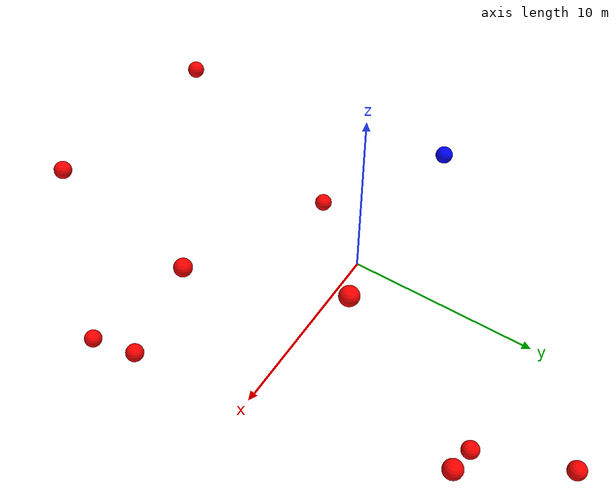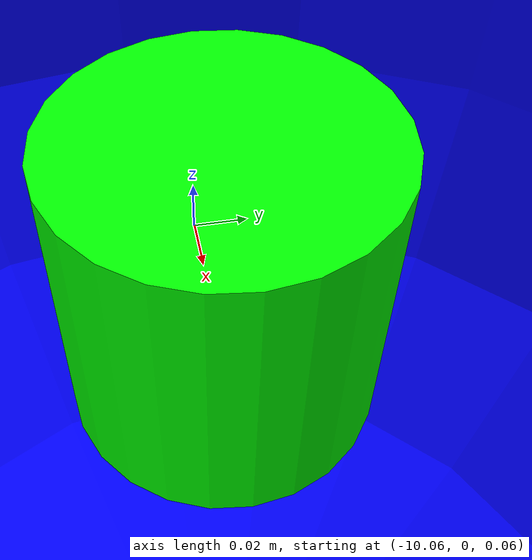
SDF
<?xml version="1.0" ?>
<sdf version="1.8">
    <world name="3d_world">
        <physics name="1ms" type="ode">
            <max_step_size>0.001</max_step_size>
            <real_time_factor>1.0</real_time_factor>
            <real_time_update_rate>1000.0</real_time_update_rate>
        </physics>
        <gravity>0 0 0</gravity>

        <plugin
            filename="gz-sim-physics-system"
            name="gz::sim::v8::systems::Physics">
        </plugin>
        <plugin
            filename="libignition-gazebo-user-commands-system.so"
            name="ignition::gazebo::systems::UserCommands">
        </plugin>
        <plugin
            filename="gz-sim-scene-broadcaster-system"
            name="gz::sim::systems::SceneBroadcaster">
        </plugin>
        <plugin
            filename="gz-sim-sensors-system"
            name="gz::sim::systems::Sensors">
            <render_engine>ogre2</render_engine>
        </plugin>

        <light type="directional" name="sun">
            <cast_shadows>true</cast_shadows>
            <pose>0 0 10 0 0 0</pose>
            <diffuse>0.8 0.8 0.8 1</diffuse>
            <specular>0.2 0.2 0.2 1</specular>
            <attenuation>
                <range>1000</range>
                <constant>0.9</constant>
                <linear>0.01</linear>
                <quadratic>0.001</quadratic>
            </attenuation>
            <direction>-0.5 0.1 -0.9</direction>
        </light>

        <!-- AGENTE -->
        <model name='agente' canonical_link='chassis'>
            <pose relative_to='world'>-10.0 0 0.0 0 0 0</pose>
            <link name='chassis'>
                <pose relative_to='__model__'>0.0 0 0.0 0 0 0</pose>
                <inertial>
                    <mass>1.14395</mass>
                    <inertia>
                        <ixx>0.095329</ixx>
                        <ixy>0</ixy>
                        <ixz>0</ixz>
                        <iyy>0.381317</iyy>
                        <iyz>0</iyz>
                        <izz>0.476646</izz>
                    </inertia>
                </inertial>
                <visual name='visual'>
                    <geometry>
                        <sphere>
                            <radius>0.5</radius>
                        </sphere>
                    </geometry>
                    <material>
                        <ambient>0.0 0.0 1.0 1</ambient>
                        <diffuse>0.0 0.0 1.0 1</diffuse>
                        <specular>0.0 0.0 1.0 1</specular>
                    </material>
                </visual>
                <collision name='collision'>
                    <geometry>
                        <sphere>
                            <radius>0.5</radius>
                        </sphere>
                    </geometry>
                </collision>
                <enable_gravity>false</enable_gravity>
            </link>

            <link name='lidar_link'>
                <pose relative_to='chassis'>0.0 0 0.1 0 0 0</pose>
                <inertial>
                    <mass>0.1</mass>
                    <inertia>
                        <ixx>0.000166667</ixx>
                        <iyy>0.000166667</iyy>
                        <izz>0.000166667</izz>
                    </inertia>
                </inertial>
                <collision name='collision'>
                    <geometry>
                        <cylinder>
                            <radius>0.05</radius>
                            <length>0.1</length>
                        </cylinder>
                    </geometry>
                </collision>
                <visual name='visual'>
                    <geometry>
                        <cylinder>
                            <radius>0.05</radius>
                            <length>0.1</length>
                        </cylinder>
                    </geometry>
                    <material>
                        <ambient>0.0 1.0 0.0 1</ambient>
                        <diffuse>0.0 1.0 0.0 1</diffuse>
                        <specular>0.0 1.0 0.0 1</specular>
                    </material>
                </visual>
                <sensor name="lidar" type="gpu_lidar">
                    <topic>scan</topic>
                    <update_rate>10</update_rate>
                    <lidar>
                        <scan>
                            <horizontal>
                                <samples>5000</samples>
                                <resolution>1</resolution>
                                <min_angle>-3.14159</min_angle>
                                <max_angle>3.14159</max_angle>
                            </horizontal>
                        </scan>
                        <range>
                            <min>0.1</min>
                            <max>10.0</max>
                            <resolution>0.01</resolution>
                        </range>
                    </lidar>
                    <visualize>true</visualize>
                    <always_on>true</always_on>
                    <update_rate>10</update_rate>
                    <pose_frame>lidar</pose_frame>
                </sensor>
                <enable_gravity>false</enable_gravity>
            </link>

            <joint name="lidar_joint" type="fixed">
                <parent>chassis</parent>
                <child>lidar_link</child>
            </joint>

            <plugin
                filename="ignition-gazebo-joint-state-publisher-system"
                name="ignition::gazebo::systems::JointStatePublisher">
            </plugin>
            <plugin
                filename="ignition-gazebo-odometry-publisher-system"
                name="ignition::gazebo::systems::OdometryPublisher">
                <dimensions>3</dimensions>
            </plugin>
            <plugin
                filename="ignition-gazebo-velocity-control-system"
                name="ignition::gazebo::systems::VelocityControl">
                <initial_linear>0.0 0 0</initial_linear>
                <initial_angular>0 0 0.0</initial_angular>
            </plugin>
            <plugin
                filename="libignition-gazebo-pose-publisher-system.so"
                name="ignition::gazebo::systems::PosePublisher">
                <topic>/agente/pose</topic>
                <frame_id>agente</frame_id>
                <update_rate>30</update_rate>
            </plugin>
        </model>

        <!-- OBSTACLE 1 -->
        <model name='obstacle_1' canonical_link='obstacle'>
            <static>false</static>
            <pose relative_to='world'>4.31 -16.60 1.62 0 0 0</pose>
            <link name='obstacle'>
                <pose relative_to='__model__'>0.0 0 0.0 0 0 0</pose>
                <visual name='visual'>
                    <geometry>
                        <sphere>
                            <radius>0.50</radius>
                        </sphere>
                    </geometry>
                    <material>
                        <ambient>1.0 0.0 0.0 1</ambient>
                        <diffuse>1.0 0.0 0.0 1</diffuse>
                        <specular>1.0 0.0 0.0 1</specular>
                    </material>
                </visual>
                <collision name='collision'>
                    <geometry>
                        <sphere>
                            <radius>0.50</radius>
                        </sphere>
                    </geometry>
                </collision>
                <enable_gravity>false</enable_gravity>
            </link>

            <plugin
                filename="ignition-gazebo-velocity-control-system"
                name="ignition::gazebo::systems::VelocityControl">
                <initial_linear>-0.02 1.99 -0.19</initial_linear>
                <initial_angular>0 0 0</initial_angular>
            </plugin>

            <plugin
                filename="ignition-gazebo-odometry-publisher-system"
                name="ignition::gazebo::systems::OdometryPublisher">
                <dimensions>3</dimensions>
            </plugin>
        </model>

        <!-- OBSTACLE 2 -->
        <model name='obstacle_2' canonical_link='obstacle'>
            <static>false</static>
            <pose relative_to='world'>9.40 -8.02 -3.20 0 0 0</pose>
            <link name='obstacle'>
                <pose relative_to='__model__'>0.0 0 0.0 0 0 0</pose>
                <visual name='visual'>
                    <geometry>
                        <sphere>
                            <radius>0.50</radius>
                        </sphere>
                    </geometry>
                    <material>
                        <ambient>1.0 0.0 0.0 1</ambient>
                        <diffuse>1.0 0.0 0.0 1</diffuse>
                        <specular>1.0 0.0 0.0 1</specular>
                    </material>
                </visual>
                <collision name='collision'>
                    <geometry>
                        <sphere>
                            <radius>0.50</radius>
                        </sphere>
                    </geometry>
                </collision>
                <enable_gravity>false</enable_gravity>
            </link>

            <plugin
                filename="ignition-gazebo-velocity-control-system"
                name="ignition::gazebo::systems::VelocityControl">
                <initial_linear>-0.99 1.44 0.58</initial_linear>
                <initial_angular>0 0 0</initial_angular>
            </plugin>

            <plugin
                filename="ignition-gazebo-odometry-publisher-system"
                name="ignition::gazebo::systems::OdometryPublisher">
                <dimensions>3</dimensions>
            </plugin>
        </model>

        <!-- OBSTACLE 3 -->
        <model name='obstacle_3' canonical_link='obstacle'>
            <static>false</static>
            <pose relative_to='world'>-7.76 -16.61 0.59 0 0 0</pose>
            <link name='obstacle'>
                <pose relative_to='__model__'>0.0 0 0.0 0 0 0</pose>
                <visual name='visual'>
                    <geometry>
                        <sphere>
                            <radius>0.50</radius>
                        </sphere>
                    </geometry>
                    <material>
                        <ambient>1.0 0.0 0.0 1</ambient>
                        <diffuse>1.0 0.0 0.0 1</diffuse>
                        <specular>1.0 0.0 0.0 1</specular>
                    </material>
                </visual>
                <collision name='collision'>
                    <geometry>
                        <sphere>
                            <radius>0.50</radius>
                        </sphere>
                    </geometry>
                </collision>
                <enable_gravity>false</enable_gravity>
            </link>

            <plugin
                filename="ignition-gazebo-velocity-control-system"
                name="ignition::gazebo::systems::VelocityControl">
                <initial_linear>0.87 1.80 -0.06</initial_linear>
                <initial_angular>0 0 0</initial_angular>
            </plugin>

            <plugin
                filename="ignition-gazebo-odometry-publisher-system"
                name="ignition::gazebo::systems::OdometryPublisher">
                <dimensions>3</dimensions>
            </plugin>
        </model>

        <!-- OBSTACLE 4 -->
        <model name='obstacle_4' canonical_link='obstacle'>
            <static>false</static>
            <pose relative_to='world'>3.18 14.40 -2.87 0 0 0</pose>
            <link name='obstacle'>
                <pose relative_to='__model__'>0.0 0 0.0 0 0 0</pose>
                <visual name='visual'>
                    <geometry>
                        <sphere>
                            <radius>0.50</radius>
                        </sphere>
                    </geometry>
                    <material>
                        <ambient>1.0 0.0 0.0 1</ambient>
                        <diffuse>1.0 0.0 0.0 1</diffuse>
                        <specular>1.0 0.0 0.0 1</specular>
                    </material>
                </visual>
                <collision name='collision'>
                    <geometry>
                        <sphere>
                            <radius>0.50</radius>
                        </sphere>
                    </geometry>
                </collision>
                <enable_gravity>false</enable_gravity>
            </link>

            <plugin
                filename="ignition-gazebo-velocity-control-system"
                name="ignition::gazebo::systems::VelocityControl">
                <initial_linear>0.38 -1.93 0.38</initial_linear>
                <initial_angular>0 0 0</initial_angular>
            </plugin>

            <plugin
                filename="ignition-gazebo-odometry-publisher-system"
                name="ignition::gazebo::systems::OdometryPublisher">
                <dimensions>3</dimensions>
            </plugin>
        </model>

        <!-- OBSTACLE 5 -->
        <model name='obstacle_5' canonical_link='obstacle'>
            <static>false</static>
            <pose relative_to='world'>8.26 9.83 0.64 0 0 0</pose>
            <link name='obstacle'>
                <pose relative_to='__model__'>0.0 0 0.0 0 0 0</pose>
                <visual name='visual'>
                    <geometry>
                        <sphere>
                            <radius>0.50</radius>
                        </sphere>
                    </geometry>
                    <material>
                        <ambient>1.0 0.0 0.0 1</ambient>
                        <diffuse>1.0 0.0 0.0 1</diffuse>
                        <specular>1.0 0.0 0.0 1</specular>
                    </material>
                </visual>
                <collision name='collision'>
                    <geometry>
                        <sphere>
                            <radius>0.50</radius>
                        </sphere>
                    </geometry>
                </collision>
                <enable_gravity>false</enable_gravity>
            </link>

            <plugin
                filename="ignition-gazebo-velocity-control-system"
                name="ignition::gazebo::systems::VelocityControl">
                <initial_linear>-0.13 -1.41 -0.09</initial_linear>
                <initial_angular>0 0 0</initial_angular>
            </plugin>

            <plugin
                filename="ignition-gazebo-odometry-publisher-system"
                name="ignition::gazebo::systems::OdometryPublisher">
                <dimensions>3</dimensions>
            </plugin>
        </model>

        <!-- OBSTACLE 6 -->
        <model name='obstacle_6' canonical_link='obstacle'>
            <static>false</static>
            <pose relative_to='world'>6.15 -6.73 1.50 0 0 0</pose>
            <link name='obstacle'>
                <pose relative_to='__model__'>0.0 0 0.0 0 0 0</pose>
                <visual name='visual'>
                    <geometry>
                        <sphere>
                            <radius>0.50</radius>
                        </sphere>
                    </geometry>
                    <material>
                        <ambient>1.0 0.0 0.0 1</ambient>
                        <diffuse>1.0 0.0 0.0 1</diffuse>
                        <specular>1.0 0.0 0.0 1</specular>
                    </material>
                </visual>
                <collision name='collision'>
                    <geometry>
                        <sphere>
                            <radius>0.50</radius>
                        </sphere>
                    </geometry>
                </collision>
                <enable_gravity>false</enable_gravity>
            </link>

            <plugin
                filename="ignition-gazebo-velocity-control-system"
                name="ignition::gazebo::systems::VelocityControl">
                <initial_linear>-1.53 1.26 -0.28</initial_linear>
                <initial_angular>0 0 0</initial_angular>
            </plugin>

            <plugin
                filename="ignition-gazebo-odometry-publisher-system"
                name="ignition::gazebo::systems::OdometryPublisher">
                <dimensions>3</dimensions>
            </plugin>
        </model>

        <!-- OBSTACLE 7 -->
        <model name='obstacle_7' canonical_link='obstacle'>
            <static>false</static>
            <pose relative_to='world'>9.22 -11.45 -4.77 0 0 0</pose>
            <link name='obstacle'>
                <pose relative_to='__model__'>0.0 0 0.0 0 0 0</pose>
                <visual name='visual'>
                    <geometry>
                        <sphere>
                            <radius>0.50</radius>
                        </sphere>
                    </geometry>
                    <material>
                        <ambient>1.0 0.0 0.0 1</ambient>
                        <diffuse>1.0 0.0 0.0 1</diffuse>
                        <specular>1.0 0.0 0.0 1</specular>
                    </material>
                </visual>
                <collision name='collision'>
                    <geometry>
                        <sphere>
                            <radius>0.50</radius>
                        </sphere>
                    </geometry>
                </collision>
                <enable_gravity>false</enable_gravity>
            </link>

            <plugin
                filename="ignition-gazebo-velocity-control-system"
                name="ignition::gazebo::systems::VelocityControl">
                <initial_linear>-1.47 1.26 0.52</initial_linear>
                <initial_angular>0 0 0</initial_angular>
            </plugin>

            <plugin
                filename="ignition-gazebo-odometry-publisher-system"
                name="ignition::gazebo::systems::OdometryPublisher">
                <dimensions>3</dimensions>
            </plugin>
        </model>

        <!-- OBSTACLE 8 -->
        <model name='obstacle_8' canonical_link='obstacle'>
            <static>false</static>
            <pose relative_to='world'>5.37 2.55 4.84 0 0 0</pose>
            <link name='obstacle'>
                <pose relative_to='__model__'>0.0 0 0.0 0 0 0</pose>
                <visual name='visual'>
                    <geometry>
                        <sphere>
                            <radius>0.50</radius>
                        </sphere>
                    </geometry>
                    <material>
                        <ambient>1.0 0.0 0.0 1</ambient>
                        <diffuse>1.0 0.0 0.0 1</diffuse>
                        <specular>1.0 0.0 0.0 1</specular>
                    </material>
                </visual>
                <collision name='collision'>
                    <geometry>
                        <sphere>
                            <radius>0.50</radius>
                        </sphere>
                    </geometry>
                </collision>
                <enable_gravity>false</enable_gravity>
            </link>

            <plugin
                filename="ignition-gazebo-velocity-control-system"
                name="ignition::gazebo::systems::VelocityControl">
                <initial_linear>-1.65 -0.53 -1.00</initial_linear>
                <initial_angular>0 0 0</initial_angular>
            </plugin>

            <plugin
                filename="ignition-gazebo-odometry-publisher-system"
                name="ignition::gazebo::systems::OdometryPublisher">
                <dimensions>3</dimensions>
            </plugin>
        </model>

        <!-- OBSTACLE 9 -->
        <model name='obstacle_9' canonical_link='obstacle'>
            <static>false</static>
            <pose relative_to='world'>3.85 9.33 -4.89 0 0 0</pose>
            <link name='obstacle'>
                <pose relative_to='__model__'>0.0 0 0.0 0 0 0</pose>
                <visual name='visual'>
                    <geometry>
                        <sphere>
                            <radius>0.50</radius>
                        </sphere>
                    </geometry>
                    <material>
                        <ambient>1.0 0.0 0.0 1</ambient>
                        <diffuse>1.0 0.0 0.0 1</diffuse>
                        <specular>1.0 0.0 0.0 1</specular>
                    </material>
                </visual>
                <collision name='collision'>
                    <geometry>
                        <sphere>
                            <radius>0.50</radius>
                        </sphere>
                    </geometry>
                </collision>
                <enable_gravity>false</enable_gravity>
            </link>

            <plugin
                filename="ignition-gazebo-velocity-control-system"
                name="ignition::gazebo::systems::VelocityControl">
                <initial_linear>0.18 -1.57 0.82</initial_linear>
                <initial_angular>0 0 0</initial_angular>
            </plugin>

            <plugin
                filename="ignition-gazebo-odometry-publisher-system"
                name="ignition::gazebo::systems::OdometryPublisher">
                <dimensions>3</dimensions>
            </plugin>
        </model>

        <!-- OBSTACLE 10 -->
        <model name='obstacle_10' canonical_link='obstacle'>
            <static>false</static>
            <pose relative_to='world'>-5.44 -5.49 -3.21 0 0 0</pose>
            <link name='obstacle'>
                <pose relative_to='__model__'>0.0 0 0.0 0 0 0</pose>
                <visual name='visual'>
                    <geometry>
                        <sphere>
                            <radius>0.50</radius>
                        </sphere>
                    </geometry>
                    <material>
                        <ambient>1.0 0.0 0.0 1</ambient>
                        <diffuse>1.0 0.0 0.0 1</diffuse>
                        <specular>1.0 0.0 0.0 1</specular>
                    </material>
                </visual>
                <collision name='collision'>
                    <geometry>
                        <sphere>
                            <radius>0.50</radius>
                        </sphere>
                    </geometry>
                </collision>
                <enable_gravity>false</enable_gravity>
            </link>

            <plugin
                filename="ignition-gazebo-velocity-control-system"
                name="ignition::gazebo::systems::VelocityControl">
                <initial_linear>0.93 1.53 0.90</initial_linear>
                <initial_angular>0 0 0</initial_angular>
            </plugin>

            <plugin
                filename="ignition-gazebo-odometry-publisher-system"
                name="ignition::gazebo::systems::OdometryPublisher">
                <dimensions>3</dimensions>
            </plugin>
        </model>

    </world>
</sdf>
